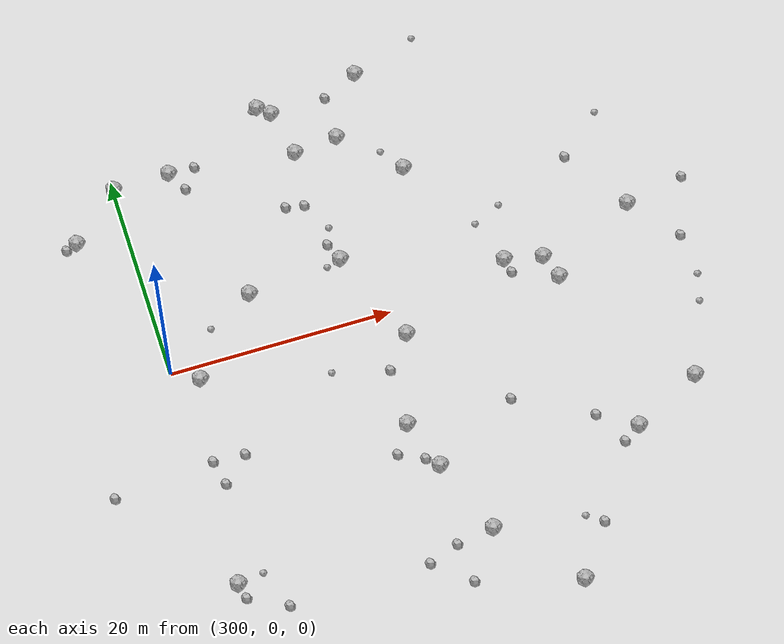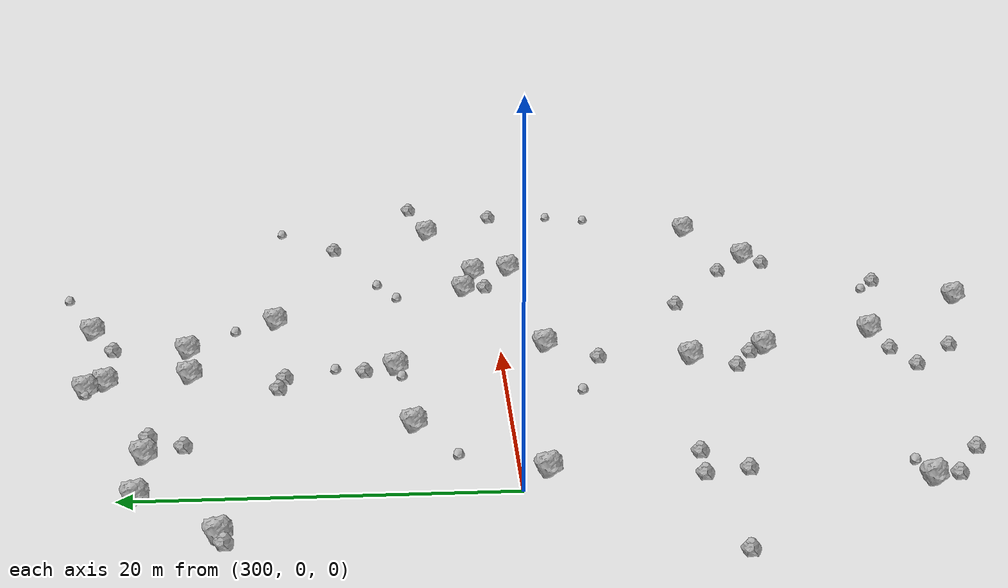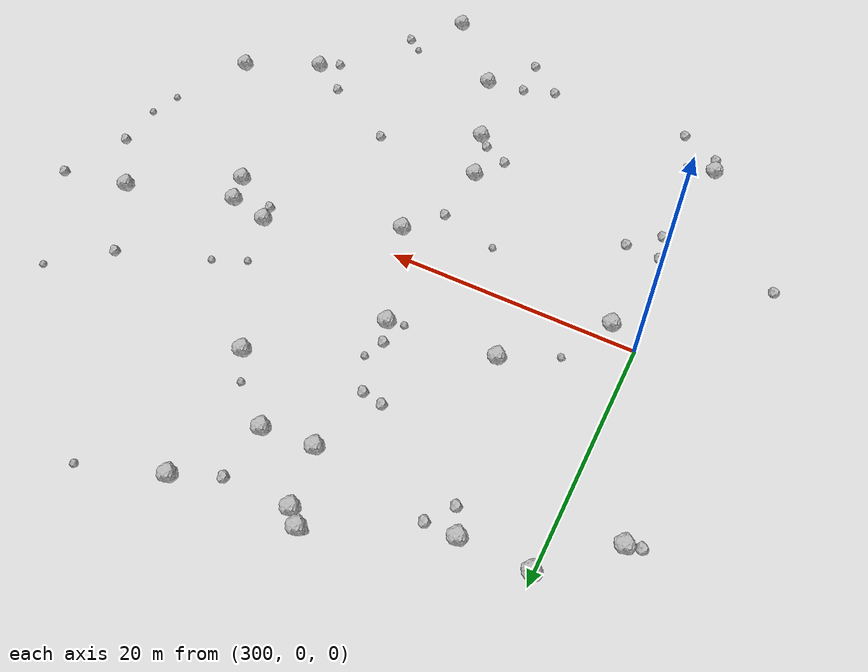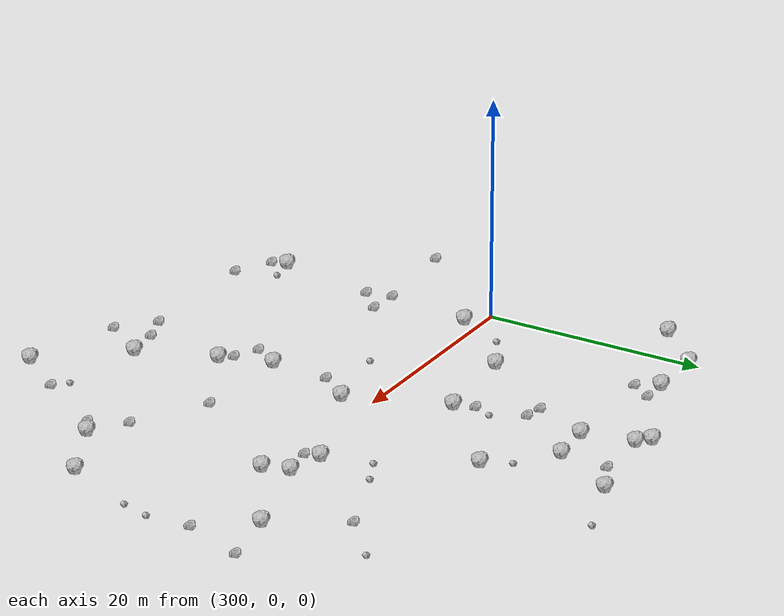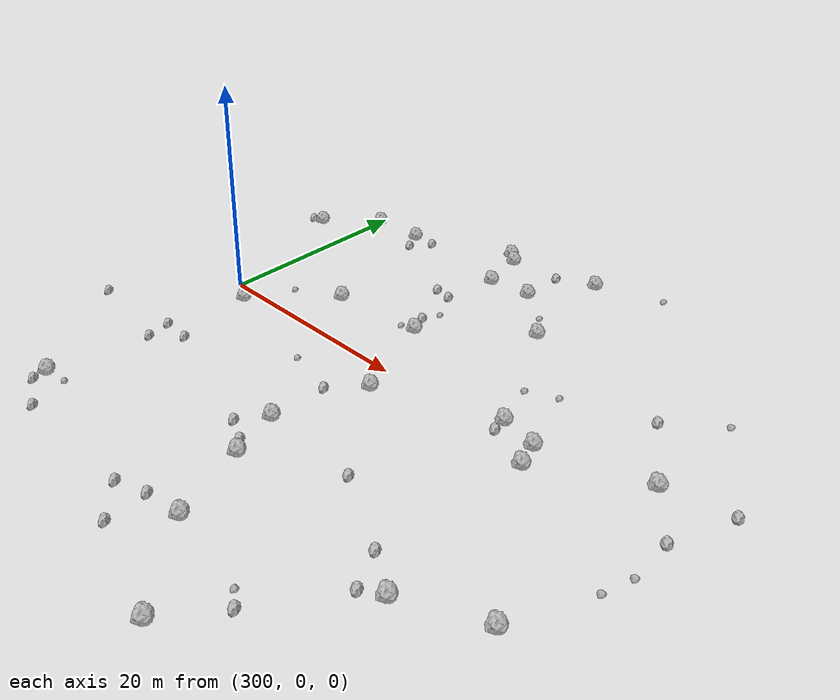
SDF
<sdf version="1.6">
 <world name="default">
  <include><uri>model://sun</uri></include>
  <model name="rock1_8_3">
   <include><uri>model://rock1</uri><pose>300.1414240461365 -20.56201742047824 0.5 0 0 0</pose></include>
  </model>
  <model name="rock1_8_4">
   <include><uri>model://rock1</uri><pose>302.3449213157717 -1.3821625170013974 0.5 0 0 0</pose></include>
  </model>
  <model name="rock1_8_5">
   <include><uri>model://rock1</uri><pose>300.13850032841236 19.078557738778983 0.5 0 0 0</pose></include>
  </model>
  <model name="rock1_8_6">
   <include><uri>model://rock1</uri><pose>336.9578406349414 -17.034499469413884 0.5 0 0 0</pose></include>
  </model>
  <model name="rock1_8_7">
   <include><uri>model://rock1</uri><pose>314.76398029207115 23.370966625193454 0.5 0 0 0</pose></include>
  </model>
  <model name="rock1_8_8">
   <include><uri>model://rock1</uri><pose>334.54571382482743 1.0045438663263653 0.5 0 0 0</pose></include>
  </model>
  <model name="rock1_8_9">
   <include><uri>model://rock1</uri><pose>331.15650415536226 1.7674040900078474 0.5 0 0 0</pose></include>
  </model>
  <model name="rock1_8_10">
   <include><uri>model://rock1</uri><pose>343.47789975536233 3.8267610069681837 0.5 0 0 0</pose></include>
  </model>
  <model name="rock1_8_11">
   <include><uri>model://rock1</uri><pose>327.81602853981957 -28.8900333105018 0.5 0 0 0</pose></include>
  </model>
  <model name="rock1_8_12">
   <include><uri>model://rock1</uri><pose>335.2342143454312 -1.3080880031227515 0.5 0 0 0</pose></include>
  </model>
  <model name="rock1_8_13">
   <include><uri>model://rock1</uri><pose>318.0643017794896 -10.880589785747635 0.5 0 0 0</pose></include>
  </model>
  <model name="rock1_8_14">
   <include><uri>model://rock1</uri><pose>317.356557840222 6.183397914975771 0.5 0 0 0</pose></include>
  </model>
  <model name="rock1_8_15">
   <include><uri>model://rock1</uri><pose>343.2288005816051 -13.97393262040854 0.5 0 0 0</pose></include>
  </model>
  <model name="rock1_8_16">
   <include><uri>model://rock1</uri><pose>319.53354597570257 -15.401559747356854 0.5 0 0 0</pose></include>
  </model>
  <model name="rock1_8_17">
   <include><uri>model://rock1</uri><pose>308.72766137613877 5.301752713561164 0.5 0 0 0</pose></include>
  </model>
  <model name="rock1_8_18">
   <include><uri>model://rock1</uri><pose>315.8284723769954 22.403349961345867 0.5 0 0 0</pose></include>
  </model>
  <model name="rock1_8_19">
   <include><uri>model://rock1</uri><pose>316.7172081882584 17.8023873590527 0.5 0 0 0</pose></include>
  </model>
  <model name="rock1_8_20">
   <include><uri>model://rock1</uri><pose>321.98940703598555 -22.23021623821242 0.5 0 0 0</pose></include>
  </model>
  <model name="rock1_8_21">
   <include><uri>model://rock1</uri><pose>320.67860605758375 -2.618545761533678 0.5 0 0 0</pose></include>
  </model>
  <model name="rock1_8_22">
   <include><uri>model://rock1</uri><pose>325.55704867235994 13.375916424499167 0.5 0 0 0</pose></include>
  </model>
  <model name="rock1_8_23">
   <include><uri>model://rock1</uri><pose>295.5789098057569 14.726787778707774 0.5 0 0 0</pose></include>
  </model>
  <model name="rock1_8_24">
   <include><uri>model://rock1</uri><pose>305.27555212877706 19.181018486342253 0.5 0 0 0</pose></include>
  </model>
  <model name="rock1_8_25">
   <include><uri>model://rock1</uri><pose>324.360164154832 24.17390656972048 0.5 0 0 0</pose></include>
  </model>
  <model name="rock1_8_26">
   <include><uri>model://rock1</uri><pose>320.7680922155191 18.24414620910892 0.5 0 0 0</pose></include>
  </model>
  <model name="rock2_8_0">
   <include><uri>model://rock2</uri><pose>346.8651350170288 -0.5969225569099734 0.3 0 0 0</pose></include>
  </model>
  <model name="rock2_8_1">
   <include><uri>model://rock2</uri><pose>292.34187479789125 -9.973892158958122 0.3 0 0 0</pose></include>
  </model>
  <model name="rock2_8_2">
   <include><uri>model://rock2</uri><pose>339.71610830681766 10.102814972249895 0.3 0 0 0</pose></include>
  </model>
  <model name="rock2_8_3">
   <include><uri>model://rock2</uri><pose>300.40172368315746 -21.95159200692395 0.3 0 0 0</pose></include>
  </model>
  <model name="rock2_8_4">
   <include><uri>model://rock2</uri><pose>320.94854992465605 22.584806012269595 0.3 0 0 0</pose></include>
  </model>
  <model name="rock2_8_5">
   <include><uri>model://rock2</uri><pose>331.11154381556474 -24.47864334401602 0.3 0 0 0</pose></include>
  </model>
  <model name="rock2_8_6">
   <include><uri>model://rock2</uri><pose>318.5327729525517 -14.403389770958961 0.3 0 0 0</pose></include>
  </model>
  <model name="rock2_8_7">
   <include><uri>model://rock2</uri><pose>318.2246954847589 -5.527632398720968 0.3 0 0 0</pose></include>
  </model>
  <model name="rock2_8_8">
   <include><uri>model://rock2</uri><pose>318.6236336459394 -22.693551495693264 0.3 0 0 0</pose></include>
  </model>
  <model name="rock2_8_9">
   <include><uri>model://rock2</uri><pose>316.37130600144826 -13.320758173805704 0.3 0 0 0</pose></include>
  </model>
  <model name="rock2_8_10">
   <include><uri>model://rock2</uri><pose>331.36868707283554 0.41659198797982455 0.3 0 0 0</pose></include>
  </model>
  <model name="rock2_8_11">
   <include><uri>model://rock2</uri><pose>315.915177054471 -23.654925790630656 0.3 0 0 0</pose></include>
  </model>
  <model name="rock2_8_12">
   <include><uri>model://rock2</uri><pose>307.61807481074914 19.193666024449 0.3 0 0 0</pose></include>
  </model>
  <model name="rock2_8_13">
   <include><uri>model://rock2</uri><pose>335.29498320525187 -18.033470124919766 0.3 0 0 0</pose></include>
  </model>
  <model name="rock2_8_14">
   <include><uri>model://rock2</uri><pose>301.67378105779767 -11.498830206729643 0.3 0 0 0</pose></include>
  </model>
  <model name="rock2_8_15">
   <include><uri>model://rock2</uri><pose>333.7534457402274 -14.906332599952457 0.3 0 0 0</pose></include>
  </model>
  <model name="rock2_8_16">
   <include><uri>model://rock2</uri><pose>315.9078505045817 12.414565493785922 0.3 0 0 0</pose></include>
  </model>
  <model name="rock2_8_17">
   <include><uri>model://rock2</uri><pose>316.6816456752774 7.961673181854998 0.3 0 0 0</pose></include>
  </model>
  <model name="rock2_8_18">
   <include><uri>model://rock2</uri><pose>349.0303854114114 4.990565423668613 0.3 0 0 0</pose></include>
  </model>
  <model name="rock2_8_19">
   <include><uri>model://rock2</uri><pose>301.19406361431595 -9.182813662201625 0.3 0 0 0</pose></include>
  </model>
  <model name="rock2_8_20">
   <include><uri>model://rock2</uri><pose>327.28784111007656 -11.254223581804538 0.3 0 0 0</pose></include>
  </model>
  <model name="rock2_8_21">
   <include><uri>model://rock2</uri><pose>314.248863367385 12.711444123255212 0.3 0 0 0</pose></include>
  </model>
  <model name="rock2_8_22">
   <include><uri>model://rock2</uri><pose>304.00101873934386 -9.348739494013987 0.3 0 0 0</pose></include>
  </model>
  <model name="rock2_8_23">
   <include><uri>model://rock2</uri><pose>303.6552561457301 -23.693093193740207 0.3 0 0 0</pose></include>
  </model>
  <model name="rock2_8_24">
   <include><uri>model://rock2</uri><pose>294.50353926595886 14.389864497941723 0.3 0 0 0</pose></include>
  </model>
  <model name="rock2_8_25">
   <include><uri>model://rock2</uri><pose>318.93448112852116 -26.287085283894022 0.3 0 0 0</pose></include>
  </model>
  <model name="rock2_8_26">
   <include><uri>model://rock2</uri><pose>306.254421018847 17.252424115965702 0.3 0 0 0</pose></include>
  </model>
  <model name="rock3_8_0">
   <include><uri>model://rock3</uri><pose>316.0106165929192 5.812592826386442 0.2 0 0 0</pose></include>
  </model>
  <model name="rock3_8_1">
   <include><uri>model://rock3</uri><pose>324.0674289192038 15.662211737049326 0.2 0 0 0</pose></include>
  </model>
  <model name="rock3_8_2">
   <include><uri>model://rock3</uri><pose>329.7684572909251 -23.495496344503255 0.2 0 0 0</pose></include>
  </model>
  <model name="rock3_8_3">
   <include><uri>model://rock3</uri><pose>304.5251992776916 3.051036508248764 0.2 0 0 0</pose></include>
  </model>
  <model name="rock3_8_4">
   <include><uri>model://rock3</uri><pose>343.89971429971706 13.726357300607553 0.2 0 0 0</pose></include>
  </model>
  <model name="rock3_8_5">
   <include><uri>model://rock3</uri><pose>332.4387605226168 7.2043291050843905 0.2 0 0 0</pose></include>
  </model>
  <model name="rock3_8_6">
   <include><uri>model://rock3</uri><pose>346.9517609975744 -4.692732030416661 0.2 0 0 0</pose></include>
  </model>
  <model name="rock3_8_7">
   <include><uri>model://rock3</uri><pose>329.8407291530243 5.991643762018143 0.2 0 0 0</pose></include>
  </model>
  <model name="rock3_8_8">
   <include><uri>model://rock3</uri><pose>330.4740472409236 26.361551143499362 0.2 0 0 0</pose></include>
  </model>
  <model name="rock3_8_9">
   <include><uri>model://rock3</uri><pose>317.3152243513758 9.581637320936991 0.2 0 0 0</pose></include>
  </model>
  <model name="rock3_8_10">
   <include><uri>model://rock3</uri><pose>302.36061813764434 -20.20734325782373 0.2 0 0 0</pose></include>
  </model>
  <model name="rock3_8_11">
   <include><uri>model://rock3</uri><pose>313.3141401755744 -4.20113615267779 0.2 0 0 0</pose></include>
  </model>
  <model name="rock3_8_12">
   <include><uri>model://rock3</uri><pose>346.16649780045134 -7.276361414104322 0.2 0 0 0</pose></include>
  </model>
  <model name="rock3_8_13">
   <include><uri>model://rock3</uri><pose>314.18325503510397 23.26391929518644 0.2 0 0 0</pose></include>
  </model>
 </world>
</sdf>
